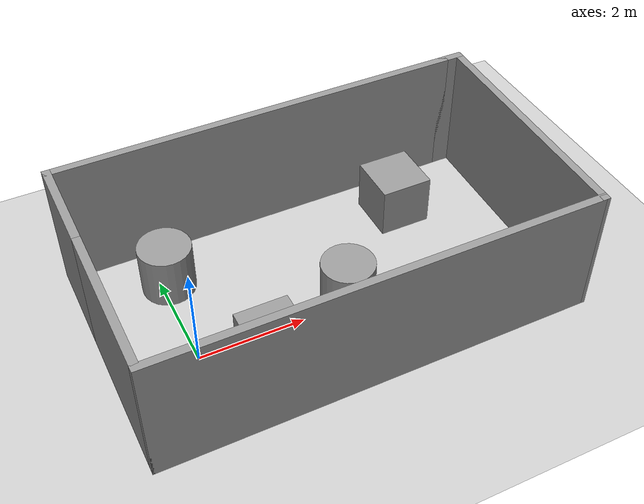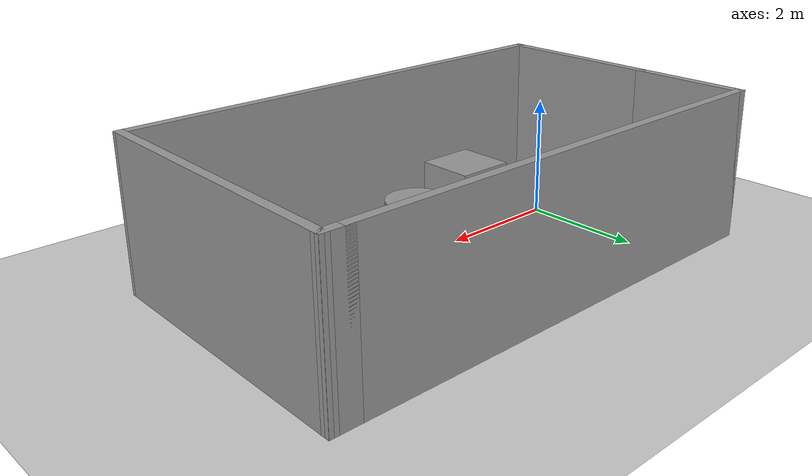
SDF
<sdf version="1.7">
 <world name="default">
  <light name="sun" type="directional">
   <pose>0 0 10 0 -0 0</pose>
   <diffuse>0.8 0.8 0.8 1</diffuse>
   <specular>0.2 0.2 0.2 1</specular>
   <attenuation>
    <range>1000</range>
    <constant>0.9</constant>
    <linear>0.01</linear>
    <quadratic>0.001</quadratic>
   </attenuation>
   <direction>-0.5 0.1 -0.9</direction>
   <spot><inner_angle>0</inner_angle><outer_angle>0</outer_angle><falloff>0</falloff></spot>
  </light>
  <model name="ground_plane">
   <static>1</static>
   <link name="link">
    <collision name="collision">
     <geometry><plane><normal>0 0 1</normal><size>100 100</size></plane></geometry>
     <surface>
      <contact><collide_bitmask>65535</collide_bitmask></contact>
      <friction><ode><mu>100</mu><mu2>50</mu2></ode></friction>
     </surface>
    </collision>
    <visual name="visual">
     <cast_shadows>0</cast_shadows>
     <geometry><plane><normal>0 0 1</normal><size>100 100</size></plane></geometry>
     <material>
      <script><uri>file://media/materials/scripts/gazebo.material</uri><name>Gazebo/Grey</name></script>
     </material>
    </visual>
   </link>
  </model>
  <gravity>0 0 -9.8</gravity>
  <magnetic_field>6e-06 2.3e-05 -4.2e-05</magnetic_field>
  <atmosphere type="adiabatic"/>
  <physics type="ode">
   <max_step_size>0.001</max_step_size>
   <real_time_factor>1</real_time_factor>
   <real_time_update_rate>1000</real_time_update_rate>
  </physics>
  <scene><ambient>0.4 0.4 0.4 1</ambient><background>0.7 0.7 0.7 1</background><shadows>1</shadows></scene>
  <spherical_coordinates>
   <surface_model>EARTH_WGS84</surface_model>
   <latitude_deg>0</latitude_deg>
   <longitude_deg>0</longitude_deg>
   <elevation>0</elevation>
   <heading_deg>0</heading_deg>
  </spherical_coordinates>
  <model name="modell">
   <pose>2.69079 0.56 0 0 -0 0</pose>
   <link name="Wall_0">
    <collision name="Wall_0_Collision">
     <geometry><box><size>8.25 0.15 2.5</size></box></geometry>
     <pose>0 0 1.25 0 -0 0</pose>
    </collision>
    <visual name="Wall_0_Visual">
     <pose>0 0 1.25 0 -0 0</pose>
     <geometry><box><size>8.25 0.15 2.5</size></box></geometry>
     <material>
      <script><uri>file://media/materials/scripts/gazebo.material</uri><name>Gazebo/Grey</name></script>
      <ambient>1 1 1 1</ambient>
     </material>
     <meta><layer>0</layer></meta>
    </visual>
    <pose>-0.050789 -2.35 0 0 -0 0</pose>
   </link>
   <link name="Wall_2">
    <collision name="Wall_2_Collision">
     <geometry><box><size>3 0.15 2.5</size></box></geometry>
     <pose>0 0 1.25 0 -0 0</pose>
    </collision>
    <visual name="Wall_2_Visual">
     <pose>0 0 1.25 0 -0 0</pose>
     <geometry><box><size>3 0.15 2.5</size></box></geometry>
     <material>
      <script><uri>file://media/materials/scripts/gazebo.material</uri><name>Gazebo/Grey</name></script>
      <ambient>1 1 1 1</ambient>
     </material>
     <meta><layer>0</layer></meta>
    </visual>
    <pose>-4.10079 -0.925 0 0 -0 1.5708</pose>
   </link>
   <link name="Wall_4">
    <collision name="Wall_4_Collision">
     <geometry><box><size>2 0.15 2.5</size></box></geometry>
     <pose>0 0 1.25 0 -0 0</pose>
    </collision>
    <visual name="Wall_4_Visual">
     <pose>0 0 1.25 0 -0 0</pose>
     <geometry><box><size>2 0.15 2.5</size></box></geometry>
     <material>
      <script><uri>file://media/materials/scripts/gazebo.material</uri><name>Gazebo/Grey</name></script>
      <ambient>1 1 1 1</ambient>
     </material>
     <meta><layer>0</layer></meta>
    </visual>
    <pose>-4.10079 1.425 0 0 -0 1.5708</pose>
   </link>
   <link name="Wall_5">
    <collision name="Wall_5_Collision">
     <geometry><box><size>8 0.15 2.5</size></box></geometry>
     <pose>0 0 1.25 0 -0 0</pose>
    </collision>
    <visual name="Wall_5_Visual">
     <pose>0 0 1.25 0 -0 0</pose>
     <geometry><box><size>8 0.15 2.5</size></box></geometry>
     <material>
      <script><uri>file://media/materials/scripts/gazebo.material</uri><name>Gazebo/Grey</name></script>
      <ambient>1 1 1 1</ambient>
     </material>
     <meta><layer>0</layer></meta>
    </visual>
    <pose>-0.175789 2.35 0 0 -0 0</pose>
   </link>
   <link name="Wall_7">
    <collision name="Wall_7_Collision">
     <geometry><box><size>0.5 0.15 2.5</size></box></geometry>
     <pose>0 0 1.25 0 -0 0</pose>
    </collision>
    <visual name="Wall_7_Visual">
     <pose>0 0 1.25 0 -0 0</pose>
     <geometry><box><size>0.5 0.15 2.5</size></box></geometry>
     <material>
      <script><uri>file://media/materials/scripts/gazebo.material</uri><name>Gazebo/Grey</name></script>
      <ambient>1 1 1 1</ambient>
     </material>
     <meta><layer>0</layer></meta>
    </visual>
    <pose>3.92421 2.35 0 0 -0 0</pose>
   </link>
   <link name="Wall_8">
    <collision name="Wall_8_Collision">
     <geometry><box><size>4.85106 0.15 2.5</size></box></geometry>
     <pose>0 0 1.25 0 -0 0</pose>
    </collision>
    <visual name="Wall_8_Visual">
     <pose>0 0 1.25 0 -0 0</pose>
     <geometry><box><size>4.85106 0.15 2.5</size></box></geometry>
     <material>
      <script><uri>file://media/materials/scripts/gazebo.material</uri><name>Gazebo/Grey</name></script>
      <ambient>1 1 1 1</ambient>
     </material>
     <meta><layer>0</layer></meta>
    </visual>
    <pose>4.04921 0 0 0 -0 -1.59207</pose>
   </link>
   <static>1</static>
  </model>
  <model name="unit_cylinder">
   <pose>0.145321 1.8757 0.499993 -3e-06 -3e-06 0</pose>
   <link name="link">
    <inertial>
     <mass>1</mass>
     <inertia><ixx>0.145833</ixx><ixy>0</ixy><ixz>0</ixz><iyy>0.145833</iyy><iyz>0</iyz><izz>0.125</izz></inertia>
    </inertial>
    <collision name="collision">
     <geometry><cylinder><radius>0.5</radius><length>1</length></cylinder></geometry>
    </collision>
    <visual name="visual">
     <geometry><cylinder><radius>0.5</radius><length>1</length></cylinder></geometry>
     <material>
      <script><name>Gazebo/Grey</name><uri>file://media/materials/scripts/gazebo.material</uri></script>
     </material>
    </visual>
   </link>
  </model>
  <model name="unit_cylinder_0">
   <pose>2.90157 0.044388 0.499997 3e-06 4e-06 -0</pose>
   <link name="link">
    <inertial>
     <mass>1</mass>
     <inertia><ixx>0.145833</ixx><ixy>0</ixy><ixz>0</ixz><iyy>0.145833</iyy><iyz>0</iyz><izz>0.125</izz></inertia>
    </inertial>
    <collision name="collision">
     <geometry><cylinder><radius>0.5</radius><length>1</length></cylinder></geometry>
    </collision>
    <visual name="visual">
     <geometry><cylinder><radius>0.5</radius><length>1</length></cylinder></geometry>
     <material>
      <script><name>Gazebo/Grey</name><uri>file://media/materials/scripts/gazebo.material</uri></script>
     </material>
    </visual>
   </link>
  </model>
  <model name="unit_box">
   <pose>4.85267 1.85135 0.499995 -1e-05 -0 0</pose>
   <link name="link">
    <inertial>
     <mass>1</mass>
     <inertia>
      <ixx>0.166667</ixx>
      <ixy>0</ixy>
      <ixz>0</ixz>
      <iyy>0.166667</iyy>
      <iyz>0</iyz>
      <izz>0.166667</izz>
     </inertia>
    </inertial>
    <collision name="collision"><geometry><box><size>1 1 1</size></box></geometry></collision>
    <visual name="visual">
     <geometry><box><size>1 1 1</size></box></geometry>
     <material>
      <script><name>Gazebo/Grey</name><uri>file://media/materials/scripts/gazebo.material</uri></script>
     </material>
    </visual>
   </link>
  </model>
  <model name="unit_box_0">
   <pose>1.11943 -0.679567 0.5 0 -0 0</pose>
   <link name="link">
    <inertial>
     <mass>1</mass>
     <inertia>
      <ixx>0.166667</ixx>
      <ixy>0</ixy>
      <ixz>0</ixz>
      <iyy>0.166667</iyy>
      <iyz>0</iyz>
      <izz>0.166667</izz>
     </inertia>
    </inertial>
    <collision name="collision"><geometry><box><size>1 1 1</size></box></geometry></collision>
    <visual name="visual">
     <geometry><box><size>1 1 1</size></box></geometry>
     <material>
      <script><name>Gazebo/Grey</name><uri>file://media/materials/scripts/gazebo.material</uri></script>
     </material>
    </visual>
   </link>
  </model>
 </world>
</sdf>
